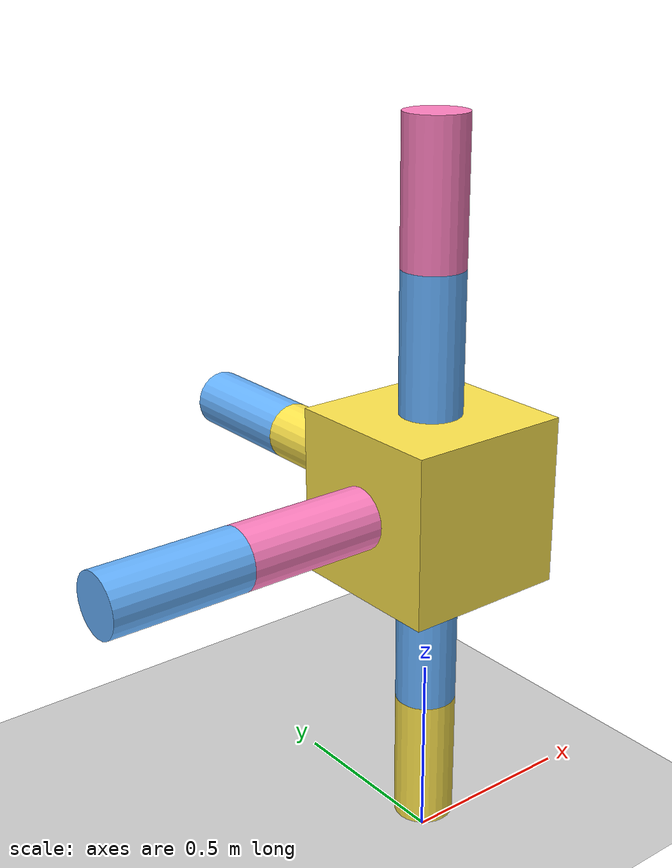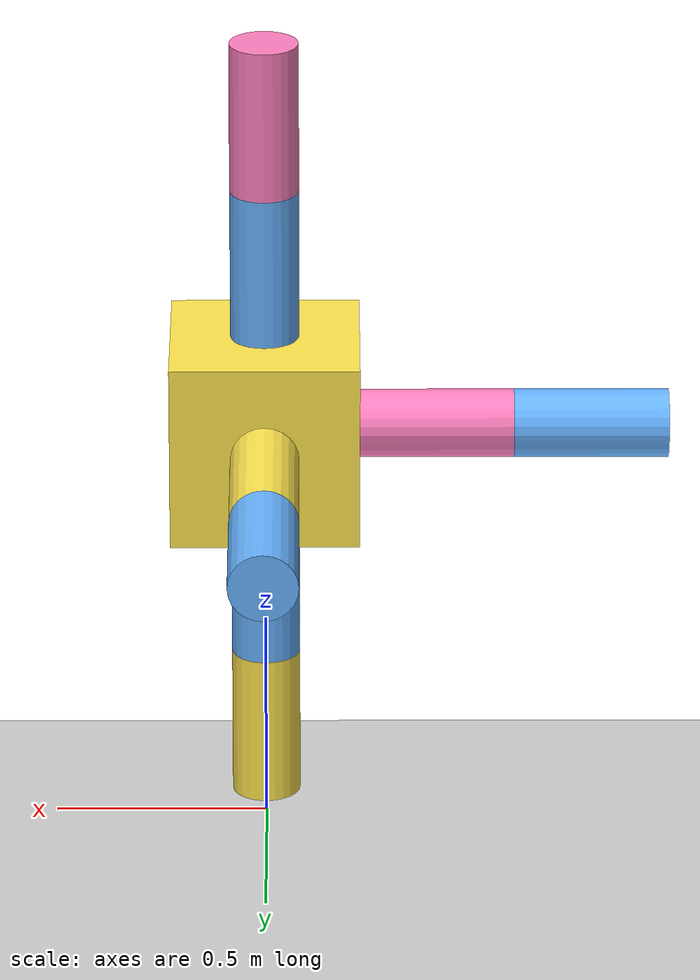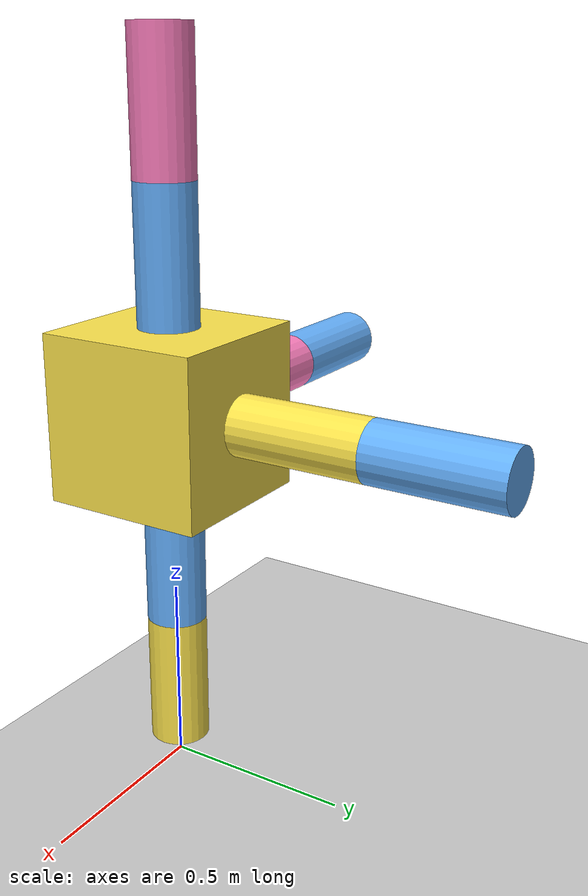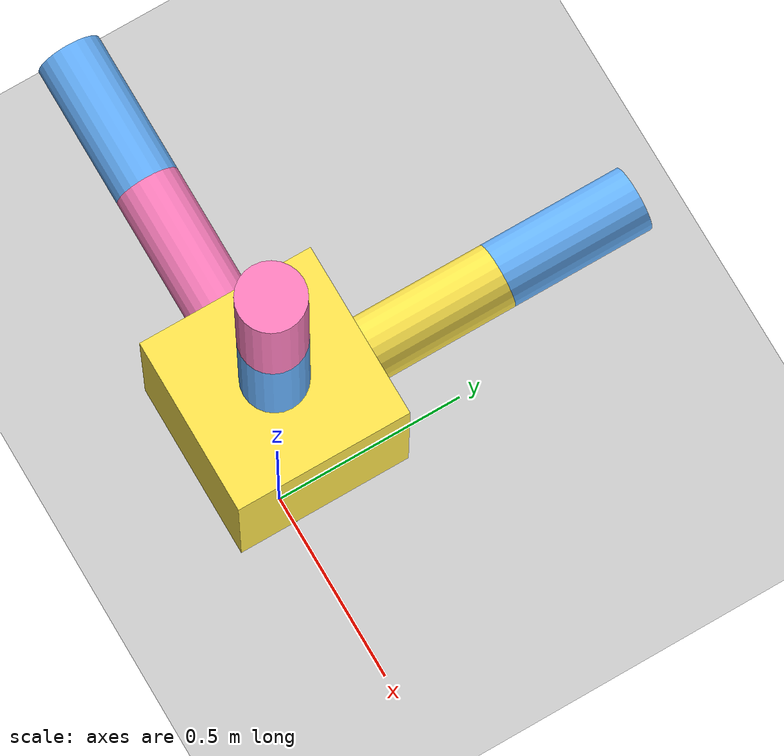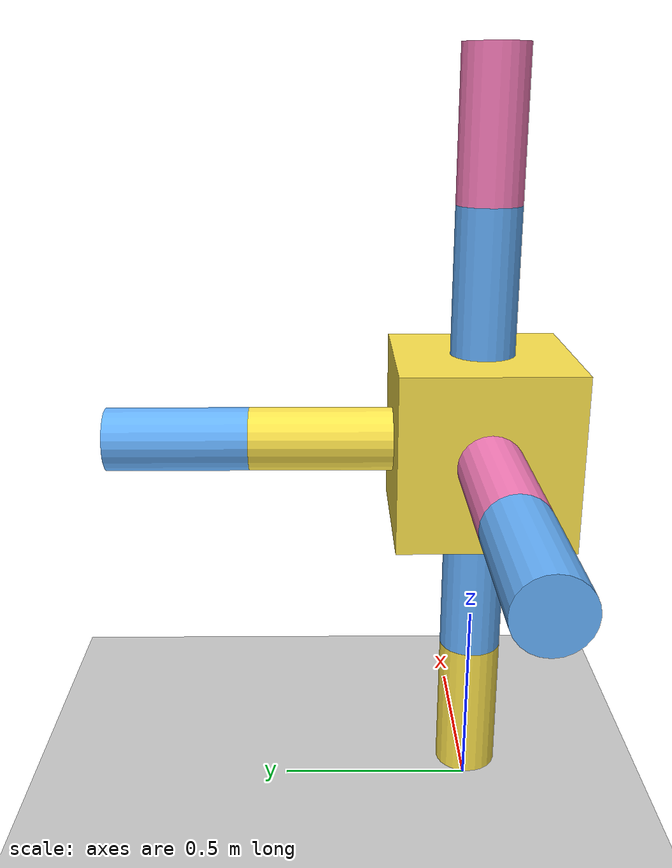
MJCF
<mujoco>
            <option gravity="0 0 -25" />
            <worldbody>
                <light diffuse=".5 .5 .6" pos="0 2 3" dir="0 -0.5 -1" />
                <geom type="plane" size="5 5 0.1" rgba="0.8 0.8 0.8 1" />
                <body name="body" pos="0 0 1" euler="0 90 0">
	<joint type="free" />
	<geom type="box" size="0.22 0.22 0.22" rgba="1.35 0.9 0.3 1.0" />
	<body name="leg0" pos="0 0 -0.4" euler="0 0 0">
		<joint name="leg0_joint" type="hinge" pos="0 0 0.18" axis="0 90 0" range="-32 32" />
		<geom type="cylinder" size="0.08 0.18 0.18" rgba="1.4 0.5 0.75 1.0" />
	<body name="leg0_seg1" pos="0 0 -0.36" euler="0 0 0">
		<joint name="leg0_seg1_joint" type="hinge" pos="0 0 0.18" axis="0 90 0" range="-32 32" />
		<geom type="cylinder" size="0.08 0.18 0.18" rgba="0.4 0.7 1.5 1.0" />
	</body>
	</body>
	<body name="leg1" pos="0.4 0 0" euler="0 -90 0">
		<joint name="leg1_joint" type="hinge" pos="0 0 0.18" axis="0 90 0" range="-59 59" />
		<geom type="cylinder" size="0.08 0.18 0.18" rgba="0.4 0.7 1.5 1.0" />
	<body name="leg1_seg1" pos="0 0 -0.36" euler="0 0 0">
		<joint name="leg1_seg1_joint" type="hinge" pos="0 0 0.18" axis="0 90 0" range="-59 59" />
		<geom type="cylinder" size="0.08 0.18 0.18" rgba="1.35 0.9 0.3 1.0" />
	</body>
	</body>
	<body name="leg2" pos="-0.4 0 0" euler="0 90 0">
		<joint name="leg2_joint" type="hinge" pos="0 0 0.18" axis="0 90 0" range="-36 36" />
		<geom type="cylinder" size="0.08 0.18 0.18" rgba="0.4 0.7 1.5 1.0" />
	<body name="leg2_seg1" pos="0 0 -0.36" euler="0 0 0">
		<joint name="leg2_seg1_joint" type="hinge" pos="0 0 0.18" axis="0 90 0" range="-36 36" />
		<geom type="cylinder" size="0.08 0.18 0.18" rgba="1.4 0.5 0.75 1.0" />
	</body>
	</body>
	<body name="leg3" pos="-0.4 0 0" euler="0 90 0">
		<joint name="leg3_joint" type="hinge" pos="0 0 0.18" axis="0 90 0" range="-62 62" />
		<geom type="cylinder" size="0.08 0.18 0.18" rgba="1.4 0.5 0.75 1.0" />
	<body name="leg3_seg1" pos="0 0 -0.36" euler="0 0 0">
		<joint name="leg3_seg1_joint" type="hinge" pos="0 0 0.18" axis="0 90 0" range="-62 62" />
		<geom type="cylinder" size="0.08 0.18 0.18" rgba="1.35 0.9 0.3 1.0" />
	</body>
	</body>
	<body name="leg4" pos="0 0.4 0" euler="90 0 0">
		<joint name="leg4_joint" type="hinge" pos="0 0 0.18" axis="0 90 0" range="-33 33" />
		<geom type="cylinder" size="0.08 0.18 0.18" rgba="1.35 0.9 0.3 1.0" />
	<body name="leg4_seg1" pos="0 0 -0.36" euler="0 0 0">
		<joint name="leg4_seg1_joint" type="hinge" pos="0 0 0.18" axis="0 90 0" range="-33 33" />
		<geom type="cylinder" size="0.08 0.18 0.18" rgba="0.4 0.7 1.5 1.0" />
	</body>
	</body>
	<body name="leg5" pos="-0.4 0 0" euler="0 90 0">
		<joint name="leg5_joint" type="hinge" pos="0 0 0.18" axis="0 90 0" range="-38 38" />
		<geom type="cylinder" size="0.08 0.18 0.18" rgba="0.4 0.7 1.5 1.0" />
	<body name="leg5_seg1" pos="0 0 -0.36" euler="0 0 0">
		<joint name="leg5_seg1_joint" type="hinge" pos="0 0 0.18" axis="0 90 0" range="-38 38" />
		<geom type="cylinder" size="0.08 0.18 0.18" rgba="1.4 0.5 0.75 1.0" />
	</body>
	</body>
</body>
            </worldbody>
                <actuator>
                    <motor gear="67" joint="leg0_joint" />
<motor gear="47" joint="leg1_joint" />
<motor gear="78" joint="leg2_joint" />
<motor gear="40" joint="leg3_joint" />
<motor gear="50" joint="leg4_joint" />
<motor gear="74" joint="leg5_joint" />

                </actuator>
        </mujoco>
